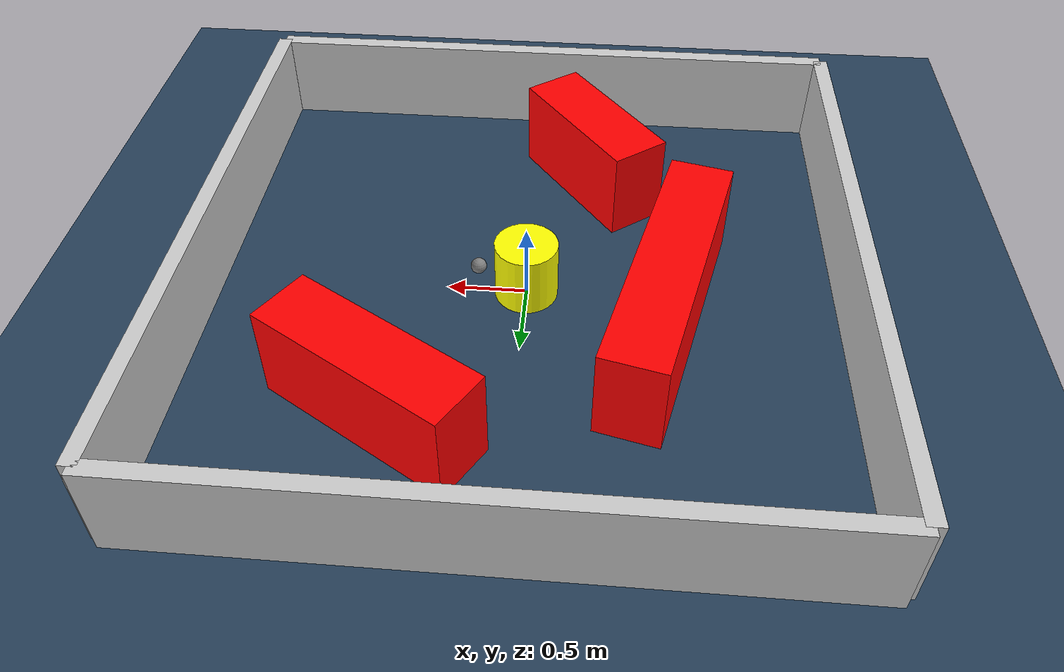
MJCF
<?xml version="1.0" ?>
<mujoco model="generated_environment">
  <option timestep="0.01" integrator="RK4" cone="elliptic"/>
  <default>
    <geom density="1"/>
  </default>
  <asset>
    <texture builtin="gradient" height="3072" rgb1="0.3 0.5 0.7" rgb2="0 0 0" type="skybox" width="512"/>
    <texture builtin="checker" height="300" mark="edge" markrgb="0.8 0.8 0.8" name="groundplane" rgb1="0.2 0.3 0.4" rgb2="0.1 0.2 0.3" type="2d" width="300"/>
    <material name="groundplane" reflectance="0.2" texrepeat="5 5" texture="groundplane" texuniform="true"/>
    <material name="robot" rgba="0.0 1.0 0.0 1"/>
  </asset>
  <worldbody>
    <light dir="0 0 -1" directional="true" pos="0 0 1.5"/>
    <geom condim="4" friction="1.0 0.005 0.001" material="groundplane" name="floor" size="0 0 0.05" type="plane"/>
    <body name="walls">
      <geom name="wall_1" condim="4" pos="-2.0 0.0 0.3" rgba="0.800000011920929 0.800000011920929 0.800000011920929 1.0" size="0.05 2.0 0.3" type="box"/>
      <geom name="wall_2" condim="4" pos="2.0 0.0 0.3" rgba="0.800000011920929 0.800000011920929 0.800000011920929 1.0" size="0.05 2.0 0.3" type="box"/>
      <geom name="wall_3" condim="4" pos="0.0 -2.0 0.3" rgba="0.800000011920929 0.800000011920929 0.800000011920929 1.0" size="2.0 0.05 0.3" type="box"/>
      <geom name="wall_4" condim="4" pos="0.0 2.0 0.3" rgba="0.800000011920929 0.800000011920929 0.800000011920929 1.0" size="2.0 0.05 0.3" type="box"/>
    </body>
    <body name="robot">
      <joint name="joint_x" type="slide" pos="0 0 0" axis="1 0 0"/>
      <joint name="joint_y" type="slide" pos="0 0 0" axis="0 1 0"/>
      <geom name="robot" type="sphere" pos="0.3 0.0 0.2" size="0.05" mass="5." friction="1.0 0.005 0.0001" condim="4" rgba="0.5 0.5 0.5 1.0"/>
      <site name="sensor_ball"/>
    </body>
    <body name="obstacle_movable_1">
      <geom name="obstacle_movable_1" condim="4" pos="0.0 0.0 0.2" euler="0 0 0.0" friction="1.0 0.005 0.001" rgba="1.0 1.0 0.0 1.0" size="0.2 0.2 0.0" type="cylinder" mass="0.1"/>
      <joint type="free"/>
    </body>
    <body name="obstacle_2_static">
      <geom name="obstacle_2_static" condim="4" pos="-0.8647121148226887 0.25680852121051756 0.3" euler="0 0 256.2122090363334" friction="1.0 0.005 0.001" rgba="1 0 0 1" size="0.915616559444496 0.2 0.3" type="box"/>
    </body>
    <body name="obstacle_3_static">
      <geom name="obstacle_3_static" condim="4" pos="-0.3755369619582021 -1.1666187946667443 0.3" euler="0 0 127.35218528579269" friction="1.0 0.005 0.001" rgba="1 0 0 1" size="0.5231711731408583 0.2 0.3" type="box"/>
    </body>
    <body name="obstacle_4_static">
      <geom name="obstacle_4_static" condim="4" pos="0.76589280225979 1.1093013394043838 0.3" euler="0 0 328.7098097748959" friction="1.0 0.005 0.001" rgba="1 0 0 1" size="0.6538537207699766 0.2 0.3" type="box"/>
    </body>
  </worldbody>
  <actuator>
    <motor name="actuator_x" joint="joint_x" gear="1" ctrlrange="-1 1"/>
    <motor name="actuator_y" joint="joint_y" gear="1" ctrlrange="-1 1"/>
  </actuator>
</mujoco>
